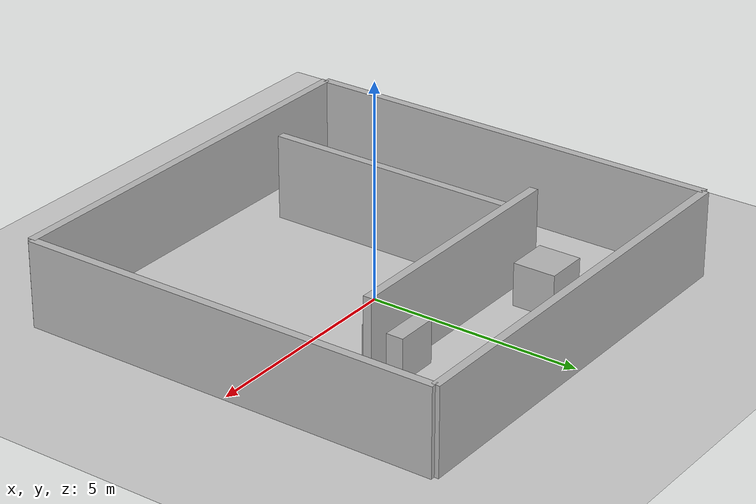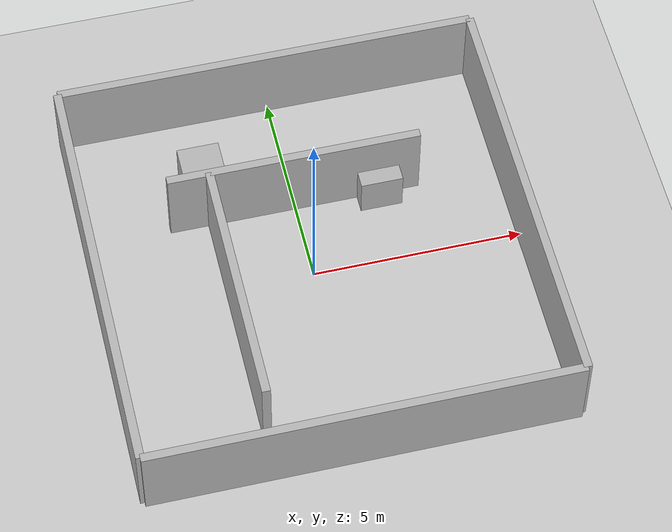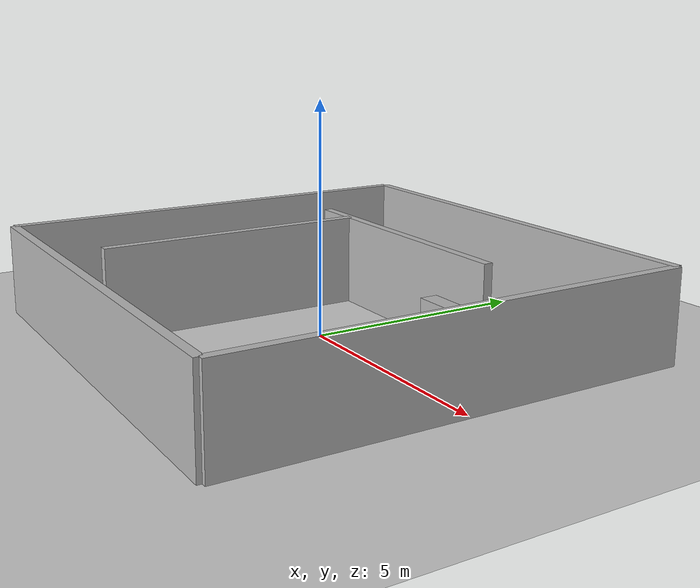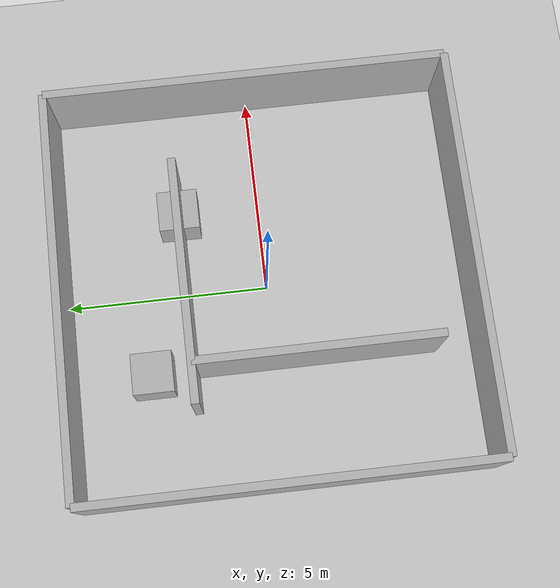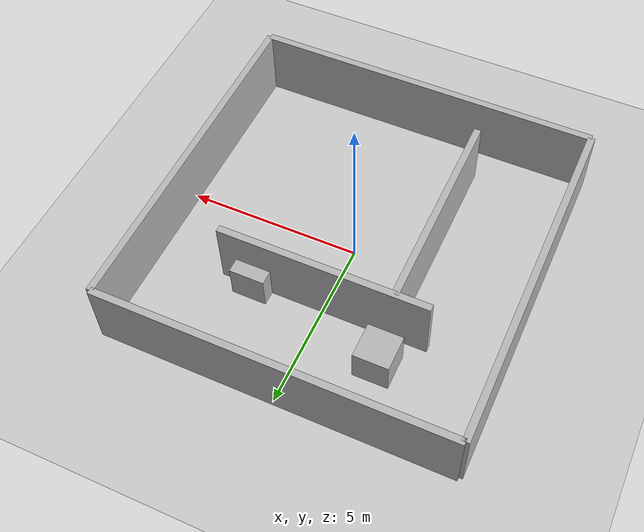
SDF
<?xml version="1.0" ?>
<sdf version="1.7">
  <world name="default">

    <!-- Physics -->
    <gravity>0 0 -9.8</gravity>
    <physics name="1ms" type="ode">
      <max_step_size>0.001</max_step_size>
      <real_time_factor>1.0</real_time_factor>
    </physics>

    <!-- Ground -->
    <model name="ground_plane">
      <static>true</static>
      <link name="link">
        <collision name="collision">
          <geometry>
            <plane>
              <normal>0 0 1</normal>
              <size>20 20</size>
            </plane>
          </geometry>
        </collision>
        <visual name="visual">
          <geometry>
            <plane>
              <normal>0 0 1</normal>
              <size>20 20</size>
            </plane>
          </geometry>
        </visual>
      </link>
    </model>

    <!-- Light -->
    <light name="sun" type="directional">
      <direction>-0.5 0.5 -1</direction>
    </light>

    <!-- Outer walls -->
    <model name="walls">
      <static>true</static>

      <!-- Wall 1 -->
      <link name="wall1">
        <pose>0 5 1 0 0 0</pose>
        <collision name="col">
          <geometry><box><size>10 0.2 2</size></box></geometry>
        </collision>
        <visual name="vis">
          <geometry><box><size>10 0.2 2</size></box></geometry>
        </visual>
      </link>

      <!-- Wall 2 -->
      <link name="wall2">
        <pose>0 -5 1 0 0 0</pose>
        <collision name="col">
          <geometry><box><size>10 0.2 2</size></box></geometry>
        </collision>
        <visual name="vis">
          <geometry><box><size>10 0.2 2</size></box></geometry>
        </visual>
      </link>

      <!-- Wall 3 -->
      <link name="wall3">
        <pose>5 0 1 0 0 0</pose>
        <collision name="col">
          <geometry><box><size>0.2 10 2</size></box></geometry>
        </collision>
        <visual name="vis">
          <geometry><box><size>0.2 10 2</size></box></geometry>
        </visual>
      </link>

      <!-- Wall 4 -->
      <link name="wall4">
        <pose>-5 0 1 0 0 0</pose>
        <collision name="col">
          <geometry><box><size>0.2 10 2</size></box></geometry>
        </collision>
        <visual name="vis">
          <geometry><box><size>0.2 10 2</size></box></geometry>
        </visual>
      </link>
    </model>

    <!-- Internal walls (rooms) -->
    <model name="internal_walls">
      <static>true</static>

      <link name="wallA">
        <pose>0 2 1 0 0 0</pose>
        <collision name="col">
          <geometry><box><size>6 0.2 2</size></box></geometry>
        </collision>
        <visual name="vis">
          <geometry><box><size>6 0.2 2</size></box></geometry>
        </visual>
      </link>

      <link name="wallB">
        <pose>-2 -1 1 0 0 1.57</pose>
        <collision name="col">
          <geometry><box><size>6 0.2 2</size></box></geometry>
        </collision>
        <visual name="vis">
          <geometry><box><size>6 0.2 2</size></box></geometry>
        </visual>
      </link>
    </model>

    <!-- Obstacles -->
    <model name="box1">
      <static>true</static>
      <pose>2 2 0.5 0 0 0</pose>
      <link name="link">
        <collision name="col">
          <geometry><box><size>1 1 1</size></box></geometry>
        </collision>
        <visual name="vis">
          <geometry><box><size>1 1 1</size></box></geometry>
        </visual>
      </link>
    </model>

    <model name="box2">
      <static>true</static>
      <pose>-2 3 0.5 0 0 0</pose>
      <link name="link">
        <collision name="col">
          <geometry><box><size>1 1 1</size></box></geometry>
        </collision>
        <visual name="vis">
          <geometry><box><size>1 1 1</size></box></geometry>
        </visual>
      </link>
    </model>

  </world>
</sdf>
